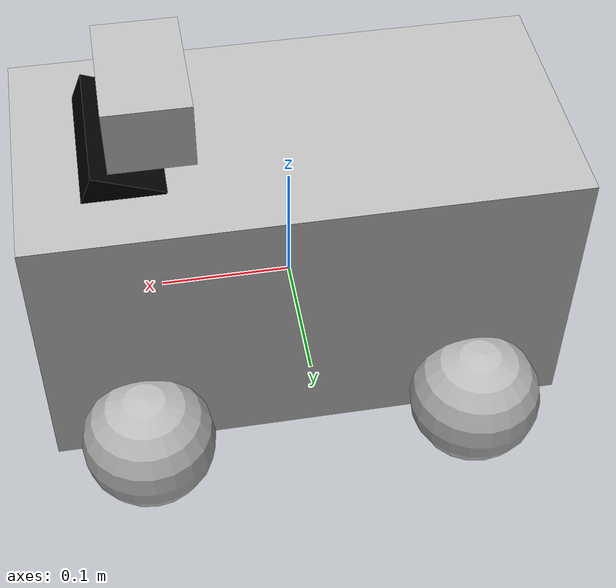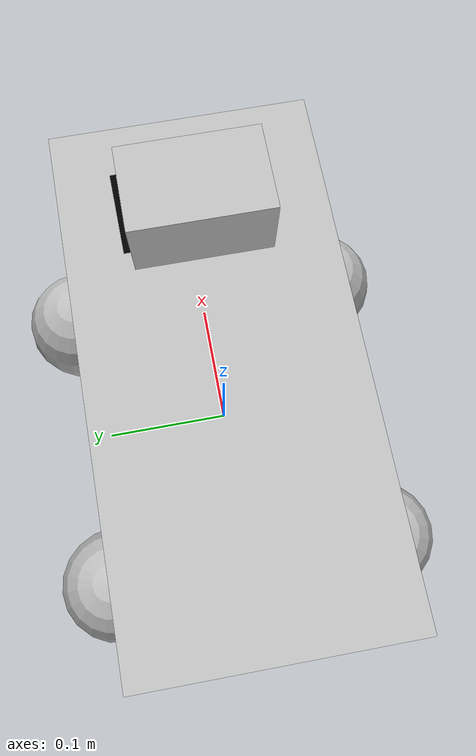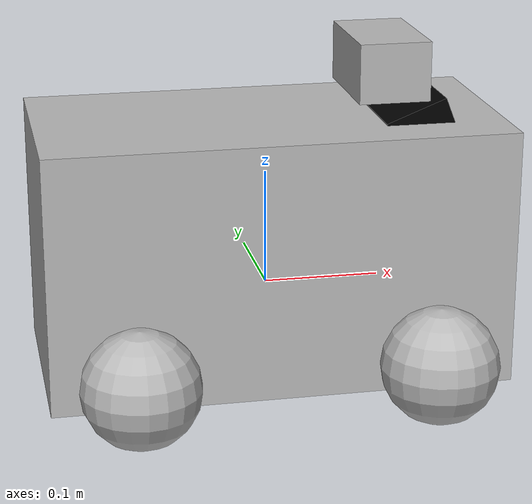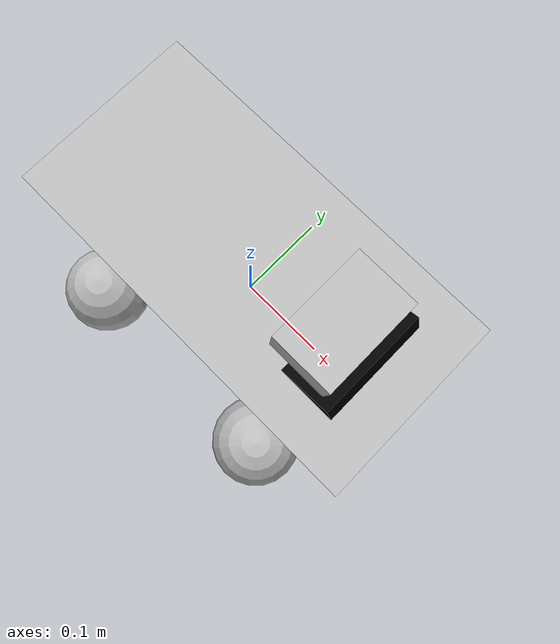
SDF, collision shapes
<?xml version="1.0" ?>

<sdf version="1.7" xmlns:ignition="https://ignitionrobotics.org">
  <model name="mecanum_bot">

    <!-- Enlace base (huella en el suelo)             -->
    <link name="base_footprint">
    </link>

    <!-- Enlace principal del chasis                  -->
    <link name="base_link">
      <self_collide>false</self_collide>
      <inertial>
        <pose>-0.0010000044107437 0.0 0.04050000384449959 0.0 0.0 0.0</pose>
        <mass>5</mass>
        <inertia>
          <ixx>0.05</ixx>
          <ixy>0</ixy>
          <ixz>0</ixz>
          <iyy>0.05</iyy>
          <iyz>0</iyz>
          <izz>0.05</izz>
        </inertia>
      </inertial>
      <!-- Colision del chasis (caja envolvente) -->
      <collision name ="Cube">
        <pose>-0.0010000044107437 0.0 0.04050000384449959 0.0 0.0 0.0</pose>
        <geometry>
          <box>
            <size>0.39200000195503235 0.1939999908208847 0.219000001168251038</size>
          </box>
        </geometry>
      </collision>
      <!-- Visual del chasis: mesh 3D del chasis completo -->
      <visual name="base_visual">
        <pose>0 0 0 0 -0 0</pose>
        <geometry>
          <mesh>
            <uri>model://nuevo_carro/meshes/mecanum_bot_chassis.obj</uri>
            <scale>1 1 1</scale>
          </mesh>
        </geometry>
      </visual>
      <!-- IMU base para futura co-simulacion con Simulink/control adaptativo -->
      <sensor name="base_imu" type="imu">
        <pose>0 0 0 0 0 0</pose>
        <always_on>true</always_on>
        <update_rate>100</update_rate>
        <visualize>false</visualize>
        <topic>imu</topic>
        <gz_frame_id>base_link</gz_frame_id>
      </sensor>
    </link>

    <!-- Rueda delantera izquierda                    -->
    <link name="front_left_wheel">
      <self_collide>false</self_collide>
      <pose>0.125 0.117 -0.041 0 0 0</pose>
      <inertial>
        <mass>0.2</mass>
        <inertia>
          <ixx>0.0001</ixx>
          <ixy>0</ixy>
          <ixz>0</ixz>
          <iyy>0.0001</iyy>
          <iyz>0</iyz>
          <izz>0.0001</izz>
        </inertia>
      </inertial>
      <visual name="front_left_wheel_visual">
        <pose>0 0 0 0 -0 0</pose>
        <geometry>
          <mesh>
            <uri>model://nuevo_carro/meshes/mecanum_bot_wheel.obj</uri>
            <scale>1 1 1</scale>
          </mesh>
        </geometry>
      </visual>
      <collision name="front_left_wheel_collision">
        <geometry>
          <sphere>
            <radius>0.05</radius>
          </sphere>
        </geometry>
        <surface>
          <friction>
            <ode>
              <mu>0.15</mu>
              <mu2>2.0</mu2>
              <slip1>0.0</slip1>
              <slip2>0.0</slip2>
              <fdir1 ignition:expressed_in="base_link">1 -1 0</fdir1>
            </ode>
          </friction>
          <contact>
            <ode>
              <soft_cfm>0</soft_cfm>
              <soft_erp>0.2</soft_erp>
              <kp>1e+5</kp>
              <kd>1</kd>
              <max_vel>0.01</max_vel>
              <min_depth>0.001</min_depth>
            </ode>
          </contact>
        </surface>
      </collision>
    </link>

    <!-- Rueda trasera izquierda                      -->
    <link name="rear_left_wheel">
      <self_collide>false</self_collide>
      <pose>-0.125 0.117 -0.041 0 0 0</pose>
      <inertial>
        <mass>0.2</mass>
        <inertia>
          <ixx>0.0001</ixx>
          <ixy>0</ixy>
          <ixz>0</ixz>
          <iyy>0.0001</iyy>
          <iyz>0</iyz>
          <izz>0.0001</izz>
        </inertia>
      </inertial>
      <visual name="rear_left_wheel_visual">
        <pose>0 0 0 0 -0 0</pose>
        <geometry>
          <mesh>
            <uri>model://nuevo_carro/meshes/mecanum_bot_wheel.obj</uri>
            <scale>1 1 1</scale>
          </mesh>
        </geometry>
      </visual>
      <collision name="rear_left_wheel_collision">
        <geometry>
          <sphere>
            <radius>0.05</radius>
          </sphere>
        </geometry>
        <surface>
          <friction>
            <ode>
              <mu>0.15</mu>
              <mu2>2.0</mu2>
              <slip1>0.0</slip1>
              <slip2>0.0</slip2>
              <!-- Direccion de friccion opuesta a la delantera (rodillos cruzados) -->
              <fdir1 ignition:expressed_in="base_link">1 1 0</fdir1>
            </ode>
          </friction>
          <contact>
            <ode>
              <soft_cfm>0</soft_cfm>
              <soft_erp>0.2</soft_erp>
              <kp>1e+5</kp>
              <kd>1</kd>
              <max_vel>0.01</max_vel>
              <min_depth>0.001</min_depth>
            </ode>
          </contact>
        </surface>
      </collision>
    </link>

    <!-- Rueda delantera derecha                      -->
    <link name="front_right_wheel">
      <self_collide>false</self_collide>
      <pose>0.125 -0.117 -0.041 0 0 0</pose>
      <inertial>
        <mass>0.2</mass>
        <inertia>
          <ixx>0.0001</ixx>
          <ixy>0</ixy>
          <ixz>0</ixz>
          <iyy>0.0001</iyy>
          <iyz>0</iyz>
          <izz>0.0001</izz>
        </inertia>
      </inertial>
      <visual name="front_right_wheel_visual">
        <!-- Rotacion de 180 grados para que el mesh de la rueda
             quede orientado correctamente en el lado derecho -->
        <pose>0 0 0 0 0 -3.14</pose>
        <geometry>
          <mesh>
            <uri>model://nuevo_carro/meshes/mecanum_bot_wheel.obj</uri>
            <scale>1 1 1</scale>
          </mesh>
        </geometry>
      </visual>
      <collision name="front_right_wheel_collision">
        <geometry>
          <sphere>
            <radius>0.05</radius>
          </sphere>
        </geometry>
        <surface>
          <friction>
            <ode>
              <mu>0.15</mu>
              <mu2>2.0</mu2>
              <slip1>0.0</slip1>
              <slip2>0.0</slip2>
              <fdir1 ignition:expressed_in="base_link">1 1 0</fdir1>
            </ode>
          </friction>
          <contact>
            <ode>
              <soft_cfm>0</soft_cfm>
              <soft_erp>0.2</soft_erp>
              <kp>1e+5</kp>
              <kd>1</kd>
              <max_vel>0.01</max_vel>
              <min_depth>0.001</min_depth>
            </ode>
          </contact>
        </surface>
      </collision>
    </link>

    <!-- Rueda trasera derecha                        -->
    <link name="rear_right_wheel">
      <self_collide>false</self_collide>
      <pose>-0.125 -0.117 -0.041 0 0 0</pose>
      <inertial>
        <mass>0.2</mass>
        <inertia>
          <ixx>0.0001</ixx>
          <ixy>0</ixy>
          <ixz>0</ixz>
          <iyy>0.0001</iyy>
          <iyz>0</iyz>
          <izz>0.0001</izz>
        </inertia>
      </inertial>
      <visual name="rear_right_wheel_visual">
        <pose>0 0 0 0 0 -3.14</pose>
        <geometry>
          <mesh>
            <uri>model://nuevo_carro/meshes/mecanum_bot_wheel.obj</uri>
            <scale>1 1 1</scale>
          </mesh>
        </geometry>
      </visual>
      <collision name="rear_right_wheel_collision">
        <geometry>
          <sphere>
            <radius>0.05</radius>
          </sphere>
        </geometry>
        <surface>
          <friction>
            <ode>
              <mu>0.15</mu>
              <mu2>2.0</mu2>
              <slip1>0.0</slip1>
              <slip2>0.0</slip2>
              <fdir1 ignition:expressed_in="base_link">1 -1 0</fdir1>
            </ode>
          </friction>
          <contact>
            <ode>
              <soft_cfm>0</soft_cfm>
              <soft_erp>0.2</soft_erp>
              <kp>1e+5</kp>
              <kd>1</kd>
              <max_vel>0.01</max_vel>
              <min_depth>0.001</min_depth>
            </ode>
          </contact>
        </surface>
      </collision>
    </link>

    <!-- Sensor LIDAR (ydlidar_x2l)                   -->
    <!-- Montado encima del chasis, ligeramente al    -->
    <!-- frente. Escanea 360 grados a 8 Hz.           -->
    <link name="base_scan">
      <pose>0.1 0. 0.1924 0 0 0</pose>
      <inertial>
        <inertia>
          <ixx>0.0001</ixx>
          <ixy>0.000</ixy>
          <ixz>0.000</ixz>
          <iyy>0.0001</iyy>
          <iyz>0.000</iyz>
          <izz>0.0001</izz>
        </inertia>
        <mass>0.125</mass>
      </inertial>
      <collision name="lidar_sensor_collision">
        <geometry>
          <box>
            <size>0.06041127070784569 0.09593304991722107 0.0502999983727932</size>
          </box>
        </geometry>
      </collision>
      <!-- Visual del LIDAR: mesh 3D del sensor ydlidar -->
      <visual name="lidar_sensor_visual">
        <geometry>
          <mesh>
            <uri>model://nuevo_carro/meshes/ydlidar_x2l.obj</uri>
            <scale>1.0 1.0 1.0</scale>
          </mesh>
        </geometry>
      </visual>
      <!-- Configuracion del sensor LIDAR en Gazebo -->
      <sensor name="ydlidar_x2l" type="gpu_lidar">
        <always_on>true</always_on>
        <gz_frame_id>base_scan</gz_frame_id>
        <!-- Topic donde Gazebo publica los datos del LIDAR -->
        <topic>scan</topic>
        <update_rate>8</update_rate>
        <visualize>true</visualize>
        <lidar>
          <scan>
            <horizontal>
              <samples>360</samples>
              <resolution>1.000000</resolution>
              <min_angle>-3.14</min_angle>
              <max_angle>3.14</max_angle>
            </horizontal>
          </scan>
          <range>
            <min>0.08</min>
            <max>12.0</max>
            <resolution>0.015000</resolution>
          </range>
          <noise>
            <type>gaussian</type>
            <mean>0.0</mean>
            <stddev>0.01</stddev>
          </noise>
        </lidar>
      </sensor>
    </link>

    <!-- Camara RGBD (OAK-D)                          -->
    <!-- Montada al frente del chasis. Publica        -->
    <!-- imagen RGB y profundidad.                    -->
    <!-- Resolucion reducida a 320x240 para           -->
    <!-- procesamiento en tiempo real                 -->
    <link name="oak-d_frame">
      <pose>0.143 0.0 0.136 0 1.2 0</pose>
      <inertial>
        <mass>0.1</mass>
      </inertial>
      <collision name="collision">
        <pose>-0.0165 0.0 -0.01525 0 0 0</pose>
        <geometry>
          <box>
            <size>0.033 0.11 0.054</size>
          </box>
        </geometry>
      </collision>
      <!-- Visual de la camara: caja negra representativa -->
      <visual name="visual">
        <pose>-0.0165 0.0 -0.01525 0 0 0</pose>
        <geometry>
          <box>
            <size>0.033 0.11 0.054</size>
          </box>
        </geometry>
        <material>
          <ambient>0 0 0 1</ambient>
          <diffuse>0 0 0 1</diffuse>
        </material>
      </visual>
      <!-- Sensor de camara RGBD (color + profundidad) -->
      <sensor name="rgbd_camera" type="rgbd_camera">
        <camera>
          <horizontal_fov>1.204</horizontal_fov>
          <image>
            <!-- Resolucion reducida para procesamiento rapido -->
            <width>320</width>
            <height>240</height>
            <format>B8G8R8</format>
          </image>
          <clip>
            <near>0.1</near>
            <far>100</far>
          </clip>
          <depth_camera>
            <clip>
              <near>0.012</near>
              <far>10</far>
            </clip>
          </depth_camera>
          <noise>
            <type>gaussian</type>
            <mean>0.0</mean>
            <stddev>0.01</stddev>
          </noise>
        </camera>
        <always_on>1</always_on>
        <update_rate>15</update_rate>
        <visualize>true</visualize>
        <!-- Topic donde Gazebo publica las imagenes de la camara -->
        <topic>camera</topic>
        <enable_metrics>true</enable_metrics>
        <gz_frame_id>oak_rgb_camera_optical_frame</gz_frame_id>
      </sensor>
    </link>

    <!-- Articulaciones (joints) de las ruedas        -->
    <!-- Cada rueda gira libremente alrededor del     -->
    <!-- eje Y (tipo revolute sin limites).           -->

    <!-- Articulacion: rueda delantera izquierda -->
    <joint name="front_left_wheel_joint" type="revolute">
      <parent>base_link</parent>
      <child>front_left_wheel</child>
      <axis>
        <xyz>0 1 0</xyz>
        <limit>
          <lower>-1.79769e+308</lower>
          <upper>1.79769e+308</upper>
        </limit>
      </axis>
    </joint>

    <!-- Articulacion: rueda trasera izquierda -->
    <joint name="rear_left_wheel_joint" type="revolute">
      <parent>base_link</parent>
      <child>rear_left_wheel</child>
      <axis>
        <xyz>0 1 0</xyz>
        <limit>
          <lower>-1.79769e+308</lower>
          <upper>1.79769e+308</upper>
        </limit>
      </axis>
    </joint>

    <!-- Articulacion: rueda delantera derecha -->
    <joint name="front_right_wheel_joint" type="revolute">
      <parent>base_link</parent>
      <child>front_right_wheel</child>
      <axis>
        <xyz>0 1 0</xyz>
        <limit>
          <lower>-1.79769e+308</lower>
          <upper>1.79769e+308</upper>
        </limit>
      </axis>
    </joint>

    <!-- Articulacion: rueda trasera derecha -->
    <joint name="rear_right_wheel_joint" type="revolute">
      <parent>base_link</parent>
      <child>rear_right_wheel</child>
      <axis>
        <xyz>0 1 0</xyz>
        <limit>
          <lower>-1.79769e+308</lower>
          <upper>1.79769e+308</upper>
        </limit>
      </axis>
    </joint>

    <!-- Articulaciones fijas (sensores y base)       -->

    <!-- Union fija: sensor LIDAR al chasis -->
    <joint name="base_scan_joint" type="fixed">
      <parent>base_link</parent>
      <child>base_scan</child>
    </joint>

    <!-- Union fija: base_footprint al chasis (referencia de odometria) -->
    <joint name="base_link_joint" type="fixed">
      <parent>base_footprint</parent>
      <child>base_link</child>
    </joint>

    <!-- Union fija: camara OAK-D al chasis -->
    <joint name="base_link_oakd_joint" type="fixed">
      <parent>base_link</parent>
      <child>oak-d_frame</child>
    </joint>

    <!-- Plugin: Traccion Mecanum (MecanumDrive)      -->
    <!-- Convierte comandos Twist (vx, vy, wz) en    -->
    <!-- velocidades individuales para cada rueda.    -->
    <plugin
      filename="gz-sim-mecanum-drive-system"
      name="gz::sim::systems::MecanumDrive">
      <front_left_joint>front_left_wheel_joint</front_left_joint>
      <front_right_joint>front_right_wheel_joint</front_right_joint>
      <back_left_joint>rear_left_wheel_joint</back_left_joint>
      <back_right_joint>rear_right_wheel_joint</back_right_joint>
      <wheel_separation>0.234</wheel_separation>
      <wheelbase>0.25</wheelbase>
      <wheel_radius>0.048</wheel_radius>
      <topic>/model/mecanum_bot/cmd_vel</topic>
      <min_acceleration>-1.0</min_acceleration>
      <max_acceleration>1.0</max_acceleration>
      <!-- Cambiamos el topic de odometria del drive para que no haga conflicto -->
      <odom_topic>odom_kinematics</odom_topic>
    </plugin>

    <!-- Plugin: Odometry Publisher (Ground Truth)    -->
    <!-- Publica la odometria real basada en la pose  -->
    <!-- fisica del robot, ya que la odometria de las -->
    <!-- ruedas mecanum es inexacta por el patinaje.  -->
    <plugin
      filename="gz-sim-odometry-publisher-system"
      name="gz::sim::systems::OdometryPublisher">
      <odom_frame>odom</odom_frame>
      <robot_base_frame>base_footprint</robot_base_frame>
      <odom_publish_frequency>50</odom_publish_frequency>
      <odom_topic>/model/mecanum_bot/odometry</odom_topic>
      <dimensions>3</dimensions>
    </plugin>

    <!-- Plugin: Publicador de Estados de Juntas      -->
    <!-- Publica la posicion/velocidad de cada        -->
    <!-- articulacion para visualizacion en RViz.     -->
    <plugin
      filename="gz-sim-joint-state-publisher-system"
      name="gz::sim::systems::JointStatePublisher">
    </plugin>

  </model>
</sdf>
